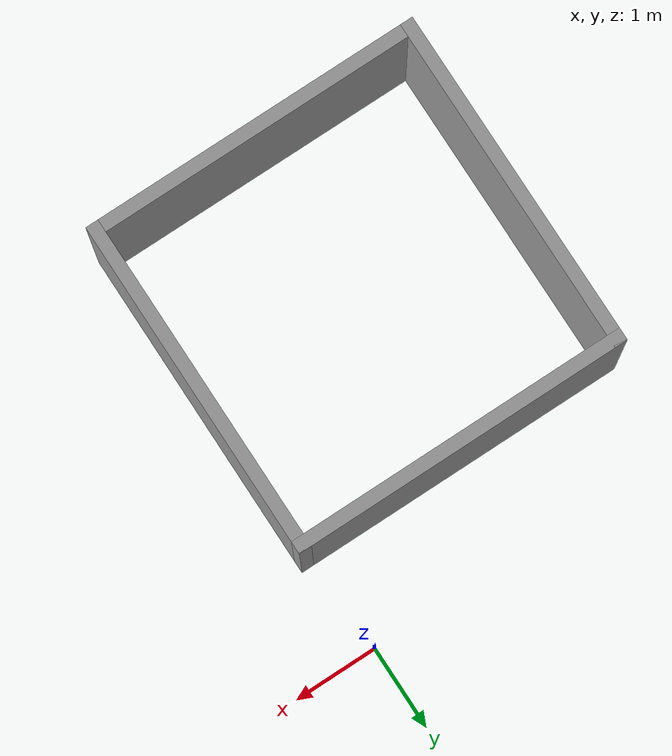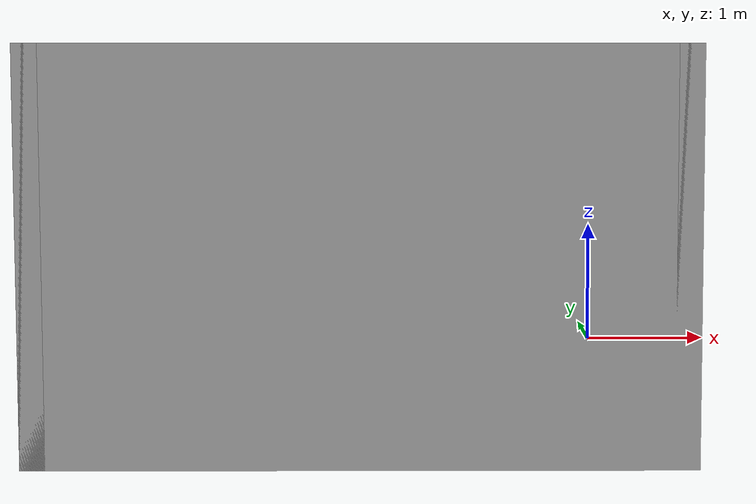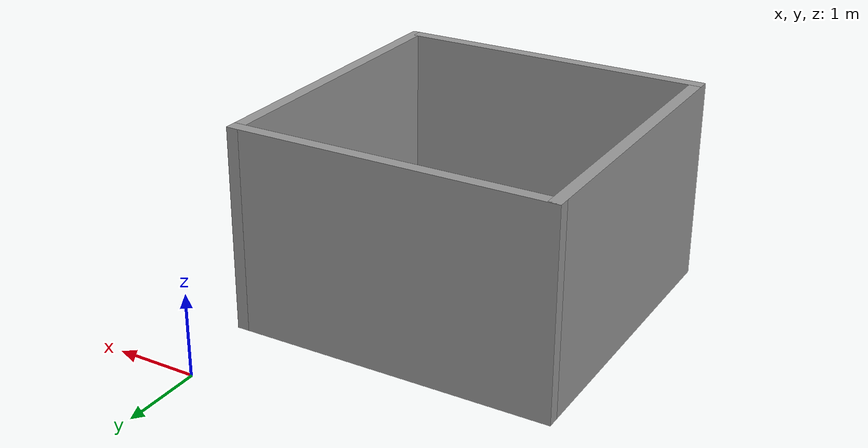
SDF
<?xml version='1.0'?>
<sdf version='1.7'>
  <model name='square_wall'>
    <pose>-1.795 -2.5525 0 0 -0 0</pose>
    <link name='Wall_1'>
      <collision name='Wall_1_Collision'>
        <geometry>
          <box>
            <size>4 0.15 2.5</size>
          </box>
        </geometry>
        <pose>0 0 1.25 0 -0 0</pose>
      </collision>
      <visual name='Wall_1_Visual'>
        <pose>0 0 1.25 0 -0 0</pose>
        <geometry>
          <box>
            <size>4 0.15 2.5</size>
          </box>
        </geometry>
        <material>
          <script>
            <uri>file://media/materials/scripts/gazebo.material</uri>
            <name>Gazebo/Grey</name>
          </script>
          <ambient>1 1 1 1</ambient>
        </material>
        <meta>
          <layer>0</layer>
        </meta>
      </visual>
      <pose>-1.925 -0.5525 0 0 -0 -1.5708</pose>
    </link>
    <link name='Wall_2'>
      <collision name='Wall_2_Collision'>
        <geometry>
          <box>
            <size>4 0.15 2.5</size>
          </box>
        </geometry>
        <pose>0 0 1.25 0 -0 0</pose>
      </collision>
      <visual name='Wall_2_Visual'>
        <pose>0 0 1.25 0 -0 0</pose>
        <geometry>
          <box>
            <size>4 0.15 2.5</size>
          </box>
        </geometry>
        <material>
          <script>
            <uri>file://media/materials/scripts/gazebo.material</uri>
            <name>Gazebo/Grey</name>
          </script>
          <ambient>1 1 1 1</ambient>
        </material>
        <meta>
          <layer>0</layer>
        </meta>
      </visual>
      <pose>0 -2.4775 0 0 -0 0</pose>
    </link>
    <link name='Wall_3'>
      <collision name='Wall_3_Collision'>
        <geometry>
          <box>
            <size>4 0.15 2.5</size>
          </box>
        </geometry>
        <pose>0 0 1.25 0 -0 0</pose>
      </collision>
      <visual name='Wall_3_Visual'>
        <pose>0 0 1.25 0 -0 0</pose>
        <geometry>
          <box>
            <size>4 0.15 2.5</size>
          </box>
        </geometry>
        <material>
          <script>
            <uri>file://media/materials/scripts/gazebo.material</uri>
            <name>Gazebo/Grey</name>
          </script>
          <ambient>1 1 1 1</ambient>
        </material>
        <meta>
          <layer>0</layer>
        </meta>
      </visual>
      <pose>1.925 -0.5525 0 0 -0 1.5708</pose>
    </link>
    <link name='Wall_4'>
      <collision name='Wall_4_Collision'>
        <geometry>
          <box>
            <size>4 0.15 2.5</size>
          </box>
        </geometry>
        <pose>0 0 1.25 0 -0 0</pose>
      </collision>
      <visual name='Wall_4_Visual'>
        <pose>0 0 1.25 0 -0 0</pose>
        <geometry>
          <box>
            <size>4 0.15 2.5</size>
          </box>
        </geometry>
        <material>
          <script>
            <uri>file://media/materials/scripts/gazebo.material</uri>
            <name>Gazebo/Grey</name>
          </script>
          <ambient>1 1 1 1</ambient>
        </material>
        <meta>
          <layer>0</layer>
        </meta>
      </visual>
      <pose>0 1.3725 0 0 -0 3.14159</pose>
    </link>
    <static>1</static>
  </model>
</sdf>
